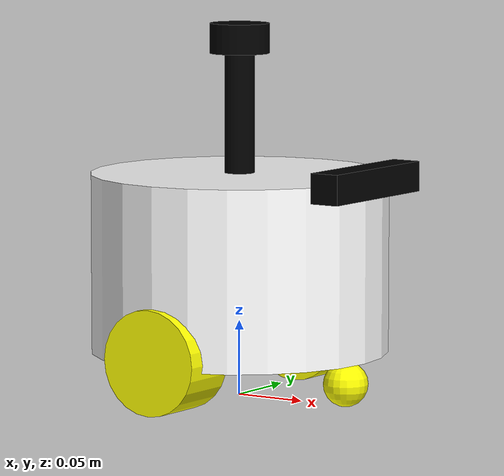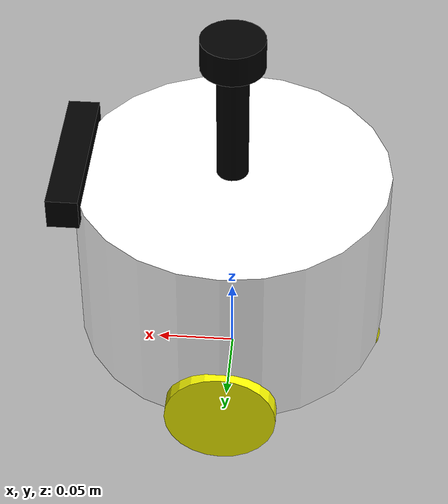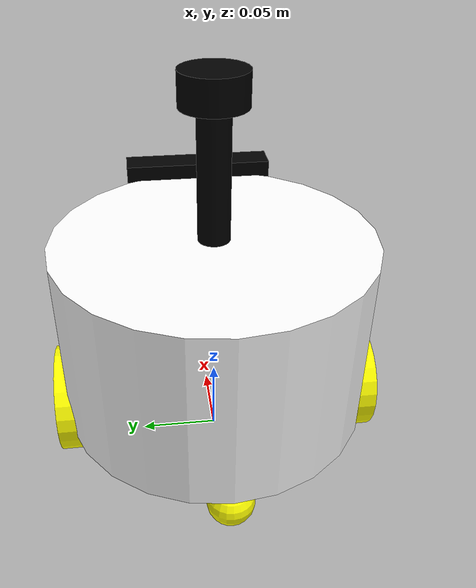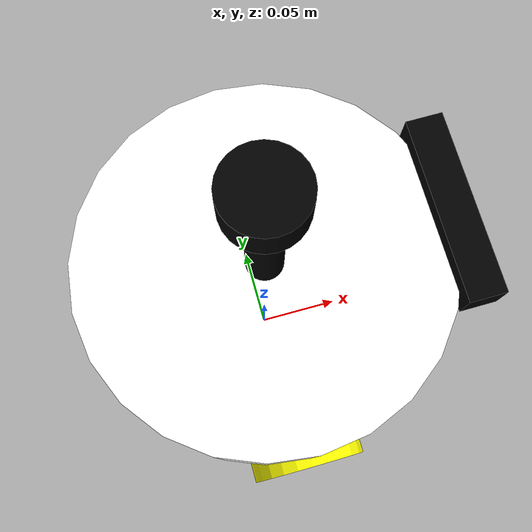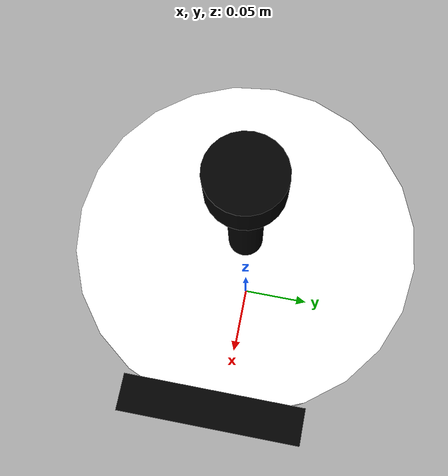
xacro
<?xml version="1.0"?>
<robot xmlns:xacro="http://www.ros.org/wiki/xacro" name="fishbot">

<!-- 全局定义变量 -->
<xacro:property name="wheel_radius" value="0.035"/>

<!-- base_link -->
<xacro:include filename="$(find chapt9_urdf_description)/urdf/fishbot/actuator/base.urdf.xacro"/>
<!-- 传感器部分 -->
<xacro:include filename="$(find chapt9_urdf_description)/urdf/fishbot/sensor/imu.urdf.xacro"/>
<xacro:include filename="$(find chapt9_urdf_description)/urdf/fishbot/sensor/laser.urdf.xacro"/>
<xacro:include filename="$(find chapt9_urdf_description)/urdf/fishbot/sensor/camera.urdf.xacro"/>
<!-- 轮子部分 -->
<xacro:include filename="$(find chapt9_urdf_description)/urdf/fishbot/actuator/wheel.urdf.xacro"/>
<xacro:include filename="$(find chapt9_urdf_description)/urdf/fishbot/actuator/caster.urdf.xacro"/>

<!-- control -->
<xacro:include filename="$(find chapt9_urdf_description)/urdf/fishbot/control/fishbot_ros2_control.xacro"/>

<xacro:base_xacro length="0.12" radius="0.1"/>

<xacro:imu_xacro imu_name="imu_0" xyz="0.0 0.0 0.01"/>
<xacro:camera_xacro camera_name="camera_0" xyz="0.1 0.0 0.06"/>
<xacro:laser_xacro  xyz="0.0 0.0 0.1"/>

<xacro:wheel_xacro  wheel_name="wheel_left"  xyz="0.0 0.085 -0.055" radius="0.035" length="0.04"/>
<xacro:wheel_xacro  wheel_name="wheel_right"  xyz="0.0 -0.085 -0.055" radius="0.035" length="0.04"/>
<xacro:caster_xacro  caster_name="wheel_front"  xyz="0.085 0.0 -0.075" radius="0.015"/>
<xacro:caster_xacro  caster_name="wheel_behind"  xyz="-0.085 0.0 -0.075" radius="0.015"/>

<xacro:fishbot_ros2_control />
</robot>

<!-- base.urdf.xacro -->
<robot xmlns:xacro="http://www.ros.org/wiki/xacro">
  <xacro:include filename="$(find chapt9_urdf_description)/urdf/fishbot/common_inertial.xacro"/>
  <xacro:macro name="base_xacro" params="length radius">
    <link name="base_footprint" />

    <link name="base_link">
      <visual>
        <origin xyz="0.0 0.0 0.0" rpy="0.0 0.0 0.0"/>
        <geometry>
          <cylinder length="${length}" radius="${radius}"/>
        </geometry>
        <material name="white">
            <color rgba="1.0 1.0 1.0 0.9"/>
        </material>
      </visual>
      <collision>
        <origin xyz="0.0 0.0 0.0" rpy="0.0 0.0 0.0"/>
        <geometry>
          <cylinder length="${length}" radius="${radius}"/>
        </geometry>
        <material name="white">
            <color rgba="1.0 1.0 1.0 0.9"/>
        </material>
      </collision>
      <!-- 惯性-->
      <xacro:cylinder_inertia m="1.0"  r="${radius}" h="${length}"/>
    </link>
    <joint name="base_link_joint" type="fixed">
      <origin xyz="0.0 0.0 ${length/2+0.03}" rpy="0.0 0.0 0.0"/>
      <parent link="base_footprint"/>
      <child link="base_link"/>
    </joint>

    <!-- gazebo中的颜色 ： 未生效 -->

  </xacro:macro>

  </robot>

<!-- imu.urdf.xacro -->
<robot xmlns:xacro="http://www.ros.org/wiki/xacro">
  <xacro:include filename="$(find chapt9_urdf_description)/urdf/fishbot/common_inertial.xacro"/>

  <xacro:macro name="imu_xacro" params="imu_name xyz">
    <link name="${imu_name}_link">
      <visual>
        <origin xyz="${xyz}" rpy="0.0 0.0 0.0"/>
        <geometry>
          <box size="0.02 0.02 0.02"/>
        </geometry>
        <material name = "black">
            <color rgba="0.0 0.0 0.0 0.9"/>
        </material>
      </visual>

      <collision>
        <origin xyz="${xyz}" rpy="0.0 0.0 0.0"/>
        <geometry>
          <box size="0.02 0.02 0.02"/>
        </geometry>
        <material name = "black">
            <color rgba="0.0 0.0 0.0 0.9"/>
        </material>
      </collision>
      <xacro:box_inertia m="0.05" w="0.02" h="0.02" d="0.02" />
    </link>
    <joint name="${imu_name}_joint" type="fixed">
      <parent link="base_link"/>
      <child link="${imu_name}_link"/>
      <origin xyz="${xyz}" rpy="0 0 0"/>
      <axis xyz="0 0 0"/>
    </joint>

    <!-- gazebo中的颜色 ： 未生效 -->
    <!-- imu sensor -->
    <gazebo reference="base_link">
      <sensor name="${imu_name}_link" type="imu">
        <always_on>1</always_on>
        <update_rate>1</update_rate>
        <visualize>true</visualize>
        <topic>imu</topic>
      </sensor>
    </gazebo>

  </xacro:macro>

  </robot>

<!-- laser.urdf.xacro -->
<robot xmlns:xacro="http://www.ros.org/wiki/xacro">
  <xacro:include filename="$(find chapt9_urdf_description)/urdf/fishbot/common_inertial.xacro"/>

  <xacro:macro name="laser_xacro" params=" xyz">
    <!-- 雷达支撑杆 -->
    <link name="laser_cylinder_link">
      <visual>
        <origin xyz="0.0 0.0 0.0" rpy="0.0 0.0 0.0"/>
        <geometry>
          <cylinder radius="0.01" length="0.10"/>
        </geometry>
        <material name = "black">
            <color rgba="0.0 0.0 0.0 0.9"/>
        </material>
      </visual>

      <collision>
        <origin xyz="0.0 0.0 0.0" rpy="0.0 0.0 0.0"/>
        <geometry>
          <cylinder radius="0.01" length="0.10"/>
        </geometry>
        <material name = "black">
            <color rgba="0.0 0.0 0.0 0.9"/>
        </material>
      </collision>
      <xacro:cylinder_inertia m="0.1" r="0.01" h="0.1"/>
    </link>

    <!-- 雷达 -->
    <link name="laser_link">
      <visual>
        <origin xyz="0.0 0.0 0.0" rpy="0.0 0.0 0.0"/>
        <geometry>
          <cylinder radius="0.02" length="0.02"/>
        </geometry>
        <material name = "black">
            <color rgba="0.0 0.0 0.0 0.9"/>
        </material>
      </visual>

      <collision>
        <origin xyz="0.0 0.0 0.0" rpy="0.0 0.0 0.0"/>
        <geometry>
          <cylinder radius="0.02" length="0.02"/>
        </geometry>
        <material name = "black">
            <color rgba="0.0 0.0 0.0 0.9"/>
        </material>
      </collision>
      <xacro:sphere_inertia  r="0.1" m="0.1"/>

    </link>

    <!-- laser sensor -->
    <gazebo reference="laser_link">
      <sensor name='gpu_lidar' type='gpu_lidar'>"
        <pose relative_to='laser_link'>0 0 0 0 0 0</pose>
        <topic>lidar</topic>
        <update_rate>10</update_rate>
        <gz_frame_id>laser_link</gz_frame_id>
        <ray>
            <scan>
                <horizontal>
                    <samples>640</samples>
                    <resolution>1</resolution>
                    <min_angle>-1.396263</min_angle>
                    <max_angle>1.396263</max_angle>
                </horizontal>
                <vertical>
                    <samples>1</samples>
                    <resolution>0.01</resolution>
                    <min_angle>0</min_angle>
                    <max_angle>0</max_angle>
                </vertical>
            </scan>
            <range>
                <min>0.08</min>
                <max>10.0</max>
                <resolution>0.01</resolution>
            </range>
        </ray>
        <always_on>1</always_on>
        <visualize>true</visualize>
      </sensor>
    </gazebo>

    <joint name="laser_joint" type="fixed">
      <parent link="laser_cylinder_link"/>
      <child link="laser_link"/>
      <origin xyz="0.0 0.0 0.05" rpy="0 0 0"/>
      <axis xyz="0 0 0"/>
    </joint>

    <joint name="laser_cylinder_joint" type="fixed">
      <parent link="base_link"/>
      <child link="laser_cylinder_link"/>
      <origin xyz="${xyz}" rpy="0 0 0"/>
      <axis xyz="0 0 0"/>
    </joint>

  </xacro:macro>

  </robot>

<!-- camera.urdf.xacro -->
<robot xmlns:xacro="http://www.ros.org/wiki/xacro">
  <xacro:include filename="$(find chapt9_urdf_description)/urdf/fishbot/common_inertial.xacro"/>

  <xacro:macro name="camera_xacro" params="camera_name xyz">
    <link name="${camera_name}_link">
      <visual>
        <origin xyz="0.0 0.0 0.0" rpy="0.0 0.0 0.0"/>
        <geometry>
          <box size="0.02 0.10 0.02"/>
        </geometry>
        <material name = "black">
            <color rgba="0.0 0.0 0.0 0.9"/>
        </material>
      </visual>

      <collision>
        <origin xyz="0.0 0.0 0.0" rpy="0.0 0.0 0.0"/>
        <geometry>
          <box size="0.02 0.10 0.02"/>
        </geometry>
        <material name = "black">
            <color rgba="0.0 0.0 0.0 0.9"/>
        </material>
      </collision>
      <xacro:box_inertia m="0.05" w="0.02" h="0.1" d="0.02" />
    </link>
    <joint name="${camera_name}_joint" type="fixed">
      <parent link="base_link"/>
      <child link="${camera_name}_link"/>
      <origin xyz="${xyz}" rpy="0 0 0"/>
      <axis xyz="0 0 0"/>
    </joint>

    <!-- gazebo中的颜色 ： 未生效 -->

    <!-- camera sensor -->
    <gazebo reference="${camera_name}_link">
      <sensor name='${camera_name}_link' type='camera'>"
        <camera>
          <image>
            <width>640</width>
            <height>480</height>
            <format>R8G8B8</format> <!-- RGB 格式 -->
          </image>

          <!-- 裁剪平面 -->
          <clip>
            <near>0.1</near>
            <far>100</far>
          </clip>

          <!-- 相机内参（可选） -->

          <!-- 保存图像到磁盘（调试用） -->
          <save enabled="false">
            <path>/tmp</path>
          </save>
        </camera>
        <pose>0 0 0 0 0 0</pose>
        <topic>camera</topic>
        <update_rate>30</update_rate>
        <always_on>1</always_on>
        <visualize>true</visualize>
      </sensor>

    </gazebo>
  </xacro:macro>

  </robot>

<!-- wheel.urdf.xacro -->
<robot xmlns:xacro="http://www.ros.org/wiki/xacro">
  <xacro:include filename="$(find chapt9_urdf_description)/urdf/fishbot/common_inertial.xacro"/>

  <xacro:macro name="wheel_xacro" params="wheel_name xyz radius length">
    <link name="${wheel_name}_link">
      <visual>
        <origin xyz="0.0 0.0 0.0" rpy="1.5708 0.0 0.0"/>
        <geometry>
          <cylinder radius="${radius}" length="${length}"/>
        </geometry>
        <material name = "yellow">
            <color rgba="1.0 1.0 0.0 0.9"/>
        </material>
      </visual>
      <collision>
        <origin xyz="0.0 0.0 0.0" rpy="1.5708 0.0 0.0"/>
        <geometry>
          <cylinder radius="${radius}" length="${length}"/>
        </geometry>
        <material name = "yellow">
            <color rgba="1.0 1.0 0.0 0.9"/>
        </material>
      </collision>
      <xacro:cylinder_inertia m="0.5" h="${length}" r="${radius}"/>
    </link>

    <joint name="${wheel_name}_joint" type="continuous">
      <parent link="base_link"/>
      <child link="${wheel_name}_link"/>
      <origin xyz="${xyz}" rpy="0 0 0"/>
      <limit effort="100" velocity="100"/>
       <joint_properties damping="0.5" friction="0.5"/>  <!--区间：0.1-1.0 -->
      <axis xyz="0 1 0"/>
    </joint>

    <gazebo reference="${wheel_name}_link">
      <mu1 value="20.0" />
      <mu2 value="20.0" />
      <kp value="100000000.0" />
      <kd value="1.0" />
    </gazebo>

  </xacro:macro>
  </robot>

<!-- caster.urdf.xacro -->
<robot xmlns:xacro="http://www.ros.org/wiki/xacro">
  <xacro:include filename="$(find chapt9_urdf_description)/urdf/fishbot/common_inertial.xacro"/>

  <xacro:macro name="caster_xacro" params="caster_name xyz radius">
    <link name="${caster_name}_link">
      <visual>
        <origin xyz="0.0 0.0 0.0" rpy="0.0 0.0 0.0"/>
        <geometry>
          <sphere radius="${radius}"/>
        </geometry>
        <material name = "yellow">
            <color rgba="1.0 1.0 0.0 0.9"/>
        </material>
      </visual>
      <collision>
        <origin xyz="0.0 0.0 0.0" rpy="0.0 0.0 0.0"/>
        <geometry>
          <sphere radius="${radius}"/>
        </geometry>
        <material name = "yellow">
            <color rgba="1.0 1.0 0.0 0.9"/>
        </material>
      </collision>
      <xacro:sphere_inertia m="0.05" r="${radius}" />
    </link>
    <joint name="${caster_name}_joint" type="fixed">
      <parent link="base_link"/>
      <child link="${caster_name}_link"/>
      <origin xyz="${xyz}" rpy="0 0 0"/>
      <axis xyz="0 1 0"/>
    </joint>

    <!-- 颜色 -->

    <!-- 摩擦系数 -->
    <gazebo reference="${caster_name}_link">
      <mu1 value = "1.0" />
      <mu2 value = "1.0" />
      <kp value = "1000000.0" />
      <kd value = "1.0" />
    </gazebo>
  </xacro:macro>

  </robot>
